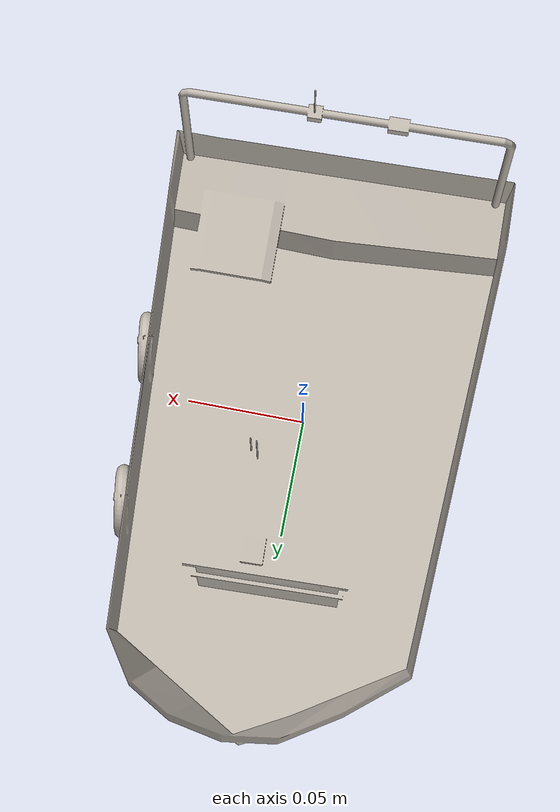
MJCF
<mujoco model="toy-boat">
  <asset>
    <mesh file="meshes/toy-boat.obj" name="toy-boat_mesh" scale="0.15 0.15 0.15"/>
    <texture file="../textures/toy-boat.png" name="tex-toy-boat" type="2d"/>
    <material name="toy-boat" reflectance="0.5" texrepeat="1 1" texture="tex-toy-boat" texuniform="true"/>
  </asset>
  <worldbody>
    <body>
      <body name="object">
        <geom pos="0 0 0" quat="0.5 0.5 0.5 0.5" mesh="toy-boat_mesh" type="mesh" solimp="0.998 0.998 0.001" solref="0.001 1" density="100" friction="0.95 0.3 0.1" material="toy-boat" group="0" condim="4"/>
      </body>
      <site rgba="0 0 0 0" size="0.005" pos="0 0 -0.085" name="bottom_site"/>
      <site rgba="0 0 0 0" size="0.005" pos="0 0 0.075" name="top_site"/>
      <site rgba="0 0 0 0" size="0.005" pos="0.025 0.025 0" name="horizontal_radius_site"/>
    </body>
  </worldbody>
</mujoco>
